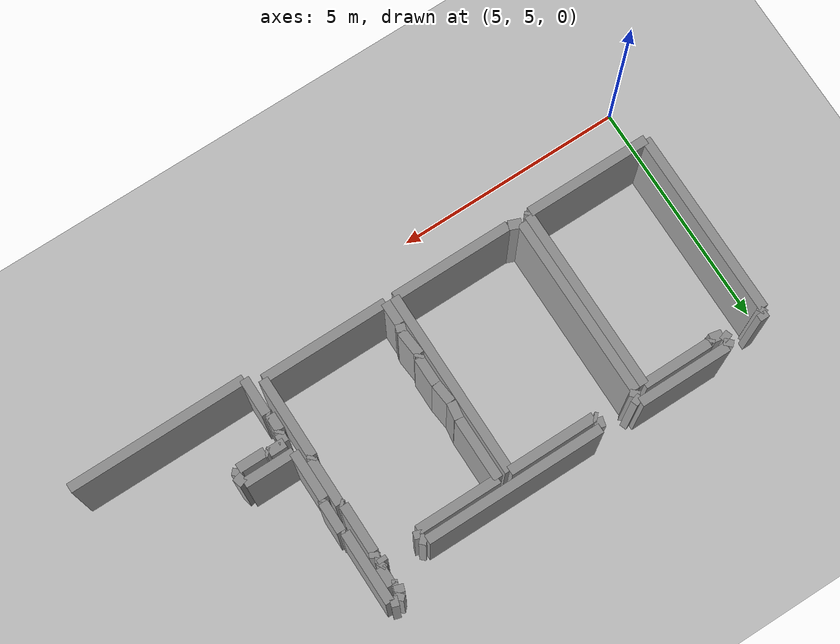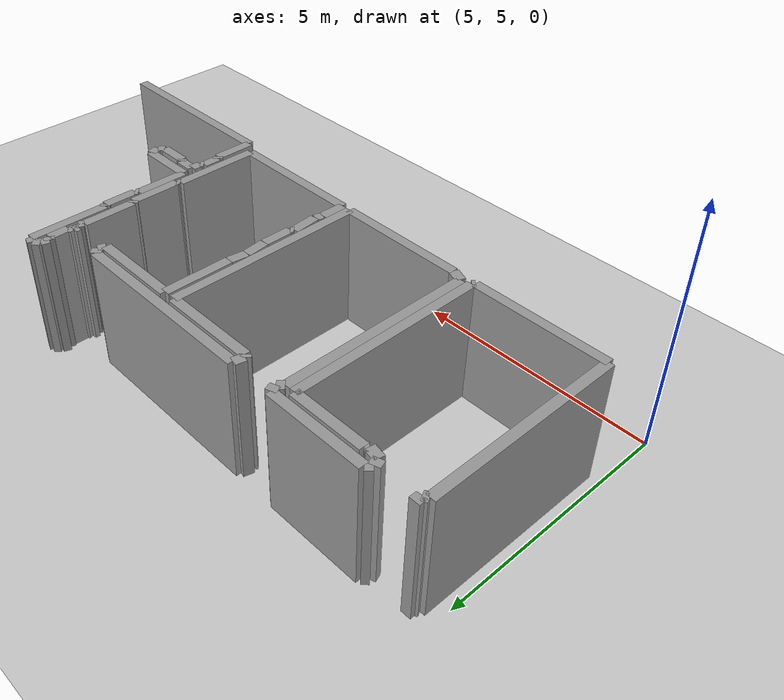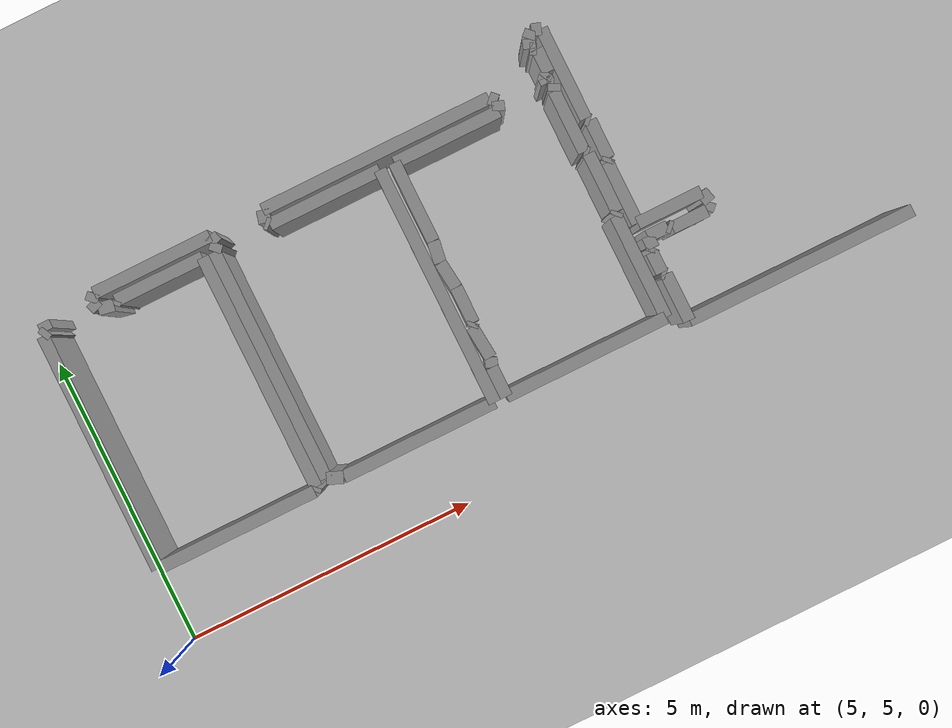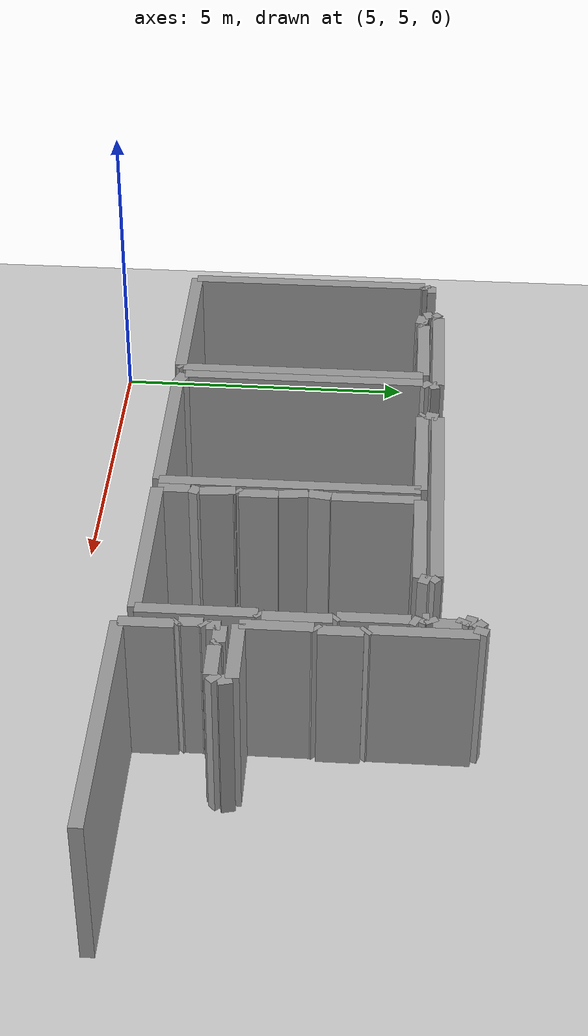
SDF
<sdf version="1.4">
 <world name="1_wall">
  <model name="ground_plane">
   <static>1</static>
   <link name="link">
    <collision name="collision">
     <geometry><plane><normal>0 0 1</normal><size>1000 1000</size></plane></geometry>
     <surface><friction><ode><mu>100</mu><mu2>50</mu2></ode></friction></surface>
    </collision>
    <visual name="visual">
     <cast_shadows>0</cast_shadows>
     <geometry><plane><normal>0 0 1</normal><size>10000 10000</size></plane></geometry>
     <material>
      <script><uri>file://media/materials/scripts/gazebo.material</uri><name>Gazebo/Grey</name></script>
     </material>
    </visual>
    <velocity_decay><linear>0</linear><angular>0</angular></velocity_decay>
   </link>
  </model>
  <model name="Wall_0">
   <static>1</static>
   <link name="Wall_0">
    <collision name="Wall_Collision_0">
     <geometry><box><size>3.85 0.2 2.5</size></box></geometry>
     <pose>0 0 1.25 0 -0 0</pose>
    </collision>
    <visual name="Wall_Visual_0">
     <pose>0 0 1.25 0 -0 0</pose>
     <geometry><box><size>3.85 0.2 2.5</size></box></geometry>
     <material>
      <script><uri>file://media/materials/scripts/gazebo.material</uri><name>Gazebo/Grey</name></script>
     </material>
    </visual>
    <velocity_decay><linear>0</linear><angular>0</angular></velocity_decay>
    <pose>16.275 6.15 0 0 0 3.14159265359</pose>
   </link>
  </model>
  <model name="Wall_1">
   <static>1</static>
   <link name="Wall_1">
    <collision name="Wall_Collision_1">
     <geometry><box><size>0.8 0.2 2.5</size></box></geometry>
     <pose>0 0 1.25 0 -0 0</pose>
    </collision>
    <visual name="Wall_Visual_1">
     <pose>0 0 1.25 0 -0 0</pose>
     <geometry><box><size>0.8 0.2 2.5</size></box></geometry>
     <material>
      <script><uri>file://media/materials/scripts/gazebo.material</uri><name>Gazebo/Grey</name></script>
     </material>
    </visual>
    <velocity_decay><linear>0</linear><angular>0</angular></velocity_decay>
    <pose>14.35 6.55 0 0 0 1.57079632679</pose>
   </link>
  </model>
  <model name="Wall_2">
   <static>1</static>
   <link name="Wall_2">
    <collision name="Wall_Collision_2">
     <geometry><box><size>0.0707106781187 0.2 2.5</size></box></geometry>
     <pose>0 0 1.25 0 -0 0</pose>
    </collision>
    <visual name="Wall_Visual_2">
     <pose>0 0 1.25 0 -0 0</pose>
     <geometry><box><size>0.0707106781187 0.2 2.5</size></box></geometry>
     <material>
      <script><uri>file://media/materials/scripts/gazebo.material</uri><name>Gazebo/Grey</name></script>
     </material>
    </visual>
    <velocity_decay><linear>0</linear><angular>0</angular></velocity_decay>
    <pose>14.325 6.975 0 0 0 2.35619449019</pose>
   </link>
  </model>
  <model name="Wall_3">
   <static>1</static>
   <link name="Wall_3">
    <collision name="Wall_Collision_3">
     <geometry><box><size>0.35 0.2 2.5</size></box></geometry>
     <pose>0 0 1.25 0 -0 0</pose>
    </collision>
    <visual name="Wall_Visual_3">
     <pose>0 0 1.25 0 -0 0</pose>
     <geometry><box><size>0.35 0.2 2.5</size></box></geometry>
     <material>
      <script><uri>file://media/materials/scripts/gazebo.material</uri><name>Gazebo/Grey</name></script>
     </material>
    </visual>
    <velocity_decay><linear>0</linear><angular>0</angular></velocity_decay>
    <pose>14.3 7.175 0 0 0 1.57079632679</pose>
   </link>
  </model>
  <model name="Wall_4">
   <static>1</static>
   <link name="Wall_4">
    <collision name="Wall_Collision_4">
     <geometry><box><size>0.0707106781187 0.2 2.5</size></box></geometry>
     <pose>0 0 1.25 0 -0 0</pose>
    </collision>
    <visual name="Wall_Visual_4">
     <pose>0 0 1.25 0 -0 0</pose>
     <geometry><box><size>0.0707106781187 0.2 2.5</size></box></geometry>
     <material>
      <script><uri>file://media/materials/scripts/gazebo.material</uri><name>Gazebo/Grey</name></script>
     </material>
    </visual>
    <velocity_decay><linear>0</linear><angular>0</angular></velocity_decay>
    <pose>14.325 7.375 0 0 0 0.785398163397</pose>
   </link>
  </model>
  <model name="Wall_5">
   <static>1</static>
   <link name="Wall_5">
    <collision name="Wall_Collision_5">
     <geometry><box><size>0.2 0.2 2.5</size></box></geometry>
     <pose>0 0 1.25 0 -0 0</pose>
    </collision>
    <visual name="Wall_Visual_5">
     <pose>0 0 1.25 0 -0 0</pose>
     <geometry><box><size>0.2 0.2 2.5</size></box></geometry>
     <material>
      <script><uri>file://media/materials/scripts/gazebo.material</uri><name>Gazebo/Grey</name></script>
     </material>
    </visual>
    <velocity_decay><linear>0</linear><angular>0</angular></velocity_decay>
    <pose>14.35 7.5 0 0 0 1.57079632679</pose>
   </link>
  </model>
  <model name="Wall_6">
   <static>1</static>
   <link name="Wall_6">
    <collision name="Wall_Collision_6">
     <geometry><box><size>0.35 0.2 2.5</size></box></geometry>
     <pose>0 0 1.25 0 -0 0</pose>
    </collision>
    <visual name="Wall_Visual_6">
     <pose>0 0 1.25 0 -0 0</pose>
     <geometry><box><size>0.35 0.2 2.5</size></box></geometry>
     <material>
      <script><uri>file://media/materials/scripts/gazebo.material</uri><name>Gazebo/Grey</name></script>
     </material>
    </visual>
    <velocity_decay><linear>0</linear><angular>0</angular></velocity_decay>
    <pose>14.525 7.6 0 0 0 0.0</pose>
   </link>
  </model>
  <model name="Wall_7">
   <static>1</static>
   <link name="Wall_7">
    <collision name="Wall_Collision_7">
     <geometry><box><size>0.0707106781187 0.2 2.5</size></box></geometry>
     <pose>0 0 1.25 0 -0 0</pose>
    </collision>
    <visual name="Wall_Visual_7">
     <pose>0 0 1.25 0 -0 0</pose>
     <geometry><box><size>0.0707106781187 0.2 2.5</size></box></geometry>
     <material>
      <script><uri>file://media/materials/scripts/gazebo.material</uri><name>Gazebo/Grey</name></script>
     </material>
    </visual>
    <velocity_decay><linear>0</linear><angular>0</angular></velocity_decay>
    <pose>14.725 7.575 0 0 0 -0.785398163397</pose>
   </link>
  </model>
  <model name="Wall_8">
   <static>1</static>
   <link name="Wall_8">
    <collision name="Wall_Collision_8">
     <geometry><box><size>0.6 0.2 2.5</size></box></geometry>
     <pose>0 0 1.25 0 -0 0</pose>
    </collision>
    <visual name="Wall_Visual_8">
     <pose>0 0 1.25 0 -0 0</pose>
     <geometry><box><size>0.6 0.2 2.5</size></box></geometry>
     <material>
      <script><uri>file://media/materials/scripts/gazebo.material</uri><name>Gazebo/Grey</name></script>
     </material>
    </visual>
    <velocity_decay><linear>0</linear><angular>0</angular></velocity_decay>
    <pose>15.05 7.55 0 0 0 0.0</pose>
   </link>
  </model>
  <model name="Wall_9">
   <static>1</static>
   <link name="Wall_9">
    <collision name="Wall_Collision_9">
     <geometry><box><size>0.141421356237 0.2 2.5</size></box></geometry>
     <pose>0 0 1.25 0 -0 0</pose>
    </collision>
    <visual name="Wall_Visual_9">
     <pose>0 0 1.25 0 -0 0</pose>
     <geometry><box><size>0.141421356237 0.2 2.5</size></box></geometry>
     <material>
      <script><uri>file://media/materials/scripts/gazebo.material</uri><name>Gazebo/Grey</name></script>
     </material>
    </visual>
    <velocity_decay><linear>0</linear><angular>0</angular></velocity_decay>
    <pose>15.4 7.6 0 0 0 0.785398163397</pose>
   </link>
  </model>
  <model name="Wall_10">
   <static>1</static>
   <link name="Wall_10">
    <collision name="Wall_Collision_10">
     <geometry><box><size>0.206155281281 0.2 2.5</size></box></geometry>
     <pose>0 0 1.25 0 -0 0</pose>
    </collision>
    <visual name="Wall_Visual_10">
     <pose>0 0 1.25 0 -0 0</pose>
     <geometry><box><size>0.206155281281 0.2 2.5</size></box></geometry>
     <material>
      <script><uri>file://media/materials/scripts/gazebo.material</uri><name>Gazebo/Grey</name></script>
     </material>
    </visual>
    <velocity_decay><linear>0</linear><angular>0</angular></velocity_decay>
    <pose>15.425 7.75 0 0 0 1.81577498992</pose>
   </link>
  </model>
  <model name="Wall_11">
   <static>1</static>
   <link name="Wall_11">
    <collision name="Wall_Collision_11">
     <geometry><box><size>1.1 0.2 2.5</size></box></geometry>
     <pose>0 0 1.25 0 -0 0</pose>
    </collision>
    <visual name="Wall_Visual_11">
     <pose>0 0 1.25 0 -0 0</pose>
     <geometry><box><size>1.1 0.2 2.5</size></box></geometry>
     <material>
      <script><uri>file://media/materials/scripts/gazebo.material</uri><name>Gazebo/Grey</name></script>
     </material>
    </visual>
    <velocity_decay><linear>0</linear><angular>0</angular></velocity_decay>
    <pose>14.85 7.85 0 0 0 3.14159265359</pose>
   </link>
  </model>
  <model name="Wall_12">
   <static>1</static>
   <link name="Wall_12">
    <collision name="Wall_Collision_12">
     <geometry><box><size>1.05 0.2 2.5</size></box></geometry>
     <pose>0 0 1.25 0 -0 0</pose>
    </collision>
    <visual name="Wall_Visual_12">
     <pose>0 0 1.25 0 -0 0</pose>
     <geometry><box><size>1.05 0.2 2.5</size></box></geometry>
     <material>
      <script><uri>file://media/materials/scripts/gazebo.material</uri><name>Gazebo/Grey</name></script>
     </material>
    </visual>
    <velocity_decay><linear>0</linear><angular>0</angular></velocity_decay>
    <pose>14.3 8.375 0 0 0 1.57079632679</pose>
   </link>
  </model>
  <model name="Wall_13">
   <static>1</static>
   <link name="Wall_13">
    <collision name="Wall_Collision_13">
     <geometry><box><size>0.0707106781187 0.2 2.5</size></box></geometry>
     <pose>0 0 1.25 0 -0 0</pose>
    </collision>
    <visual name="Wall_Visual_13">
     <pose>0 0 1.25 0 -0 0</pose>
     <geometry><box><size>0.0707106781187 0.2 2.5</size></box></geometry>
     <material>
      <script><uri>file://media/materials/scripts/gazebo.material</uri><name>Gazebo/Grey</name></script>
     </material>
    </visual>
    <velocity_decay><linear>0</linear><angular>0</angular></velocity_decay>
    <pose>14.325 8.925 0 0 0 0.785398163397</pose>
   </link>
  </model>
  <model name="Wall_14">
   <static>1</static>
   <link name="Wall_14">
    <collision name="Wall_Collision_14">
     <geometry><box><size>0.65 0.2 2.5</size></box></geometry>
     <pose>0 0 1.25 0 -0 0</pose>
    </collision>
    <visual name="Wall_Visual_14">
     <pose>0 0 1.25 0 -0 0</pose>
     <geometry><box><size>0.65 0.2 2.5</size></box></geometry>
     <material>
      <script><uri>file://media/materials/scripts/gazebo.material</uri><name>Gazebo/Grey</name></script>
     </material>
    </visual>
    <velocity_decay><linear>0</linear><angular>0</angular></velocity_decay>
    <pose>14.35 9.275 0 0 0 1.57079632679</pose>
   </link>
  </model>
  <model name="Wall_15">
   <static>1</static>
   <link name="Wall_15">
    <collision name="Wall_Collision_15">
     <geometry><box><size>0.0707106781187 0.2 2.5</size></box></geometry>
     <pose>0 0 1.25 0 -0 0</pose>
    </collision>
    <visual name="Wall_Visual_15">
     <pose>0 0 1.25 0 -0 0</pose>
     <geometry><box><size>0.0707106781187 0.2 2.5</size></box></geometry>
     <material>
      <script><uri>file://media/materials/scripts/gazebo.material</uri><name>Gazebo/Grey</name></script>
     </material>
    </visual>
    <velocity_decay><linear>0</linear><angular>0</angular></velocity_decay>
    <pose>14.325 9.625 0 0 0 2.35619449019</pose>
   </link>
  </model>
  <model name="Wall_16">
   <static>1</static>
   <link name="Wall_16">
    <collision name="Wall_Collision_16">
     <geometry><box><size>1.55 0.2 2.5</size></box></geometry>
     <pose>0 0 1.25 0 -0 0</pose>
    </collision>
    <visual name="Wall_Visual_16">
     <pose>0 0 1.25 0 -0 0</pose>
     <geometry><box><size>1.55 0.2 2.5</size></box></geometry>
     <material>
      <script><uri>file://media/materials/scripts/gazebo.material</uri><name>Gazebo/Grey</name></script>
     </material>
    </visual>
    <velocity_decay><linear>0</linear><angular>0</angular></velocity_decay>
    <pose>14.3 10.425 0 0 0 1.57079632679</pose>
   </link>
  </model>
  <model name="Wall_17">
   <static>1</static>
   <link name="Wall_17">
    <collision name="Wall_Collision_17">
     <geometry><box><size>0.158113883008 0.2 2.5</size></box></geometry>
     <pose>0 0 1.25 0 -0 0</pose>
    </collision>
    <visual name="Wall_Visual_17">
     <pose>0 0 1.25 0 -0 0</pose>
     <geometry><box><size>0.158113883008 0.2 2.5</size></box></geometry>
     <material>
      <script><uri>file://media/materials/scripts/gazebo.material</uri><name>Gazebo/Grey</name></script>
     </material>
    </visual>
    <velocity_decay><linear>0</linear><angular>0</angular></velocity_decay>
    <pose>14.225 11.225 0 0 0 2.81984209919</pose>
   </link>
  </model>
  <model name="Wall_18">
   <static>1</static>
   <link name="Wall_18">
    <collision name="Wall_Collision_18">
     <geometry><box><size>0.141421356237 0.2 2.5</size></box></geometry>
     <pose>0 0 1.25 0 -0 0</pose>
    </collision>
    <visual name="Wall_Visual_18">
     <pose>0 0 1.25 0 -0 0</pose>
     <geometry><box><size>0.141421356237 0.2 2.5</size></box></geometry>
     <material>
      <script><uri>file://media/materials/scripts/gazebo.material</uri><name>Gazebo/Grey</name></script>
     </material>
    </visual>
    <velocity_decay><linear>0</linear><angular>0</angular></velocity_decay>
    <pose>14.1 11.2 0 0 0 -2.35619449019</pose>
   </link>
  </model>
  <model name="Wall_19">
   <static>1</static>
   <link name="Wall_19">
    <collision name="Wall_Collision_19">
     <geometry><box><size>0.158113883008 0.2 2.5</size></box></geometry>
     <pose>0 0 1.25 0 -0 0</pose>
    </collision>
    <visual name="Wall_Visual_19">
     <pose>0 0 1.25 0 -0 0</pose>
     <geometry><box><size>0.158113883008 0.2 2.5</size></box></geometry>
     <material>
      <script><uri>file://media/materials/scripts/gazebo.material</uri><name>Gazebo/Grey</name></script>
     </material>
    </visual>
    <velocity_decay><linear>0</linear><angular>0</angular></velocity_decay>
    <pose>14.025 11.075 0 0 0 -1.89254688119</pose>
   </link>
  </model>
  <model name="Wall_20">
   <static>1</static>
   <link name="Wall_20">
    <collision name="Wall_Collision_20">
     <geometry><box><size>0.111803398875 0.2 2.5</size></box></geometry>
     <pose>0 0 1.25 0 -0 0</pose>
    </collision>
    <visual name="Wall_Visual_20">
     <pose>0 0 1.25 0 -0 0</pose>
     <geometry><box><size>0.111803398875 0.2 2.5</size></box></geometry>
     <material>
      <script><uri>file://media/materials/scripts/gazebo.material</uri><name>Gazebo/Grey</name></script>
     </material>
    </visual>
    <velocity_decay><linear>0</linear><angular>0</angular></velocity_decay>
    <pose>14.05 10.975 0 0 0 -0.463647609001</pose>
   </link>
  </model>
  <model name="Wall_21">
   <static>1</static>
   <link name="Wall_21">
    <collision name="Wall_Collision_21">
     <geometry><box><size>0.4 0.2 2.5</size></box></geometry>
     <pose>0 0 1.25 0 -0 0</pose>
    </collision>
    <visual name="Wall_Visual_21">
     <pose>0 0 1.25 0 -0 0</pose>
     <geometry><box><size>0.4 0.2 2.5</size></box></geometry>
     <material>
      <script><uri>file://media/materials/scripts/gazebo.material</uri><name>Gazebo/Grey</name></script>
     </material>
    </visual>
    <velocity_decay><linear>0</linear><angular>0</angular></velocity_decay>
    <pose>14.1 10.75 0 0 0 -1.57079632679</pose>
   </link>
  </model>
  <model name="Wall_22">
   <static>1</static>
   <link name="Wall_22">
    <collision name="Wall_Collision_22">
     <geometry><box><size>0.111803398875 0.2 2.5</size></box></geometry>
     <pose>0 0 1.25 0 -0 0</pose>
    </collision>
    <visual name="Wall_Visual_22">
     <pose>0 0 1.25 0 -0 0</pose>
     <geometry><box><size>0.111803398875 0.2 2.5</size></box></geometry>
     <material>
      <script><uri>file://media/materials/scripts/gazebo.material</uri><name>Gazebo/Grey</name></script>
     </material>
    </visual>
    <velocity_decay><linear>0</linear><angular>0</angular></velocity_decay>
    <pose>14.05 10.525 0 0 0 -2.67794504459</pose>
   </link>
  </model>
  <model name="Wall_23">
   <static>1</static>
   <link name="Wall_23">
    <collision name="Wall_Collision_23">
     <geometry><box><size>0.1 0.2 2.5</size></box></geometry>
     <pose>0 0 1.25 0 -0 0</pose>
    </collision>
    <visual name="Wall_Visual_23">
     <pose>0 0 1.25 0 -0 0</pose>
     <geometry><box><size>0.1 0.2 2.5</size></box></geometry>
     <material>
      <script><uri>file://media/materials/scripts/gazebo.material</uri><name>Gazebo/Grey</name></script>
     </material>
    </visual>
    <velocity_decay><linear>0</linear><angular>0</angular></velocity_decay>
    <pose>14.0 10.45 0 0 0 -1.57079632679</pose>
   </link>
  </model>
  <model name="Wall_24">
   <static>1</static>
   <link name="Wall_24">
    <collision name="Wall_Collision_24">
     <geometry><box><size>0.111803398875 0.2 2.5</size></box></geometry>
     <pose>0 0 1.25 0 -0 0</pose>
    </collision>
    <visual name="Wall_Visual_24">
     <pose>0 0 1.25 0 -0 0</pose>
     <geometry><box><size>0.111803398875 0.2 2.5</size></box></geometry>
     <material>
      <script><uri>file://media/materials/scripts/gazebo.material</uri><name>Gazebo/Grey</name></script>
     </material>
    </visual>
    <velocity_decay><linear>0</linear><angular>0</angular></velocity_decay>
    <pose>14.05 10.375 0 0 0 -0.463647609001</pose>
   </link>
  </model>
  <model name="Wall_25">
   <static>1</static>
   <link name="Wall_25">
    <collision name="Wall_Collision_25">
     <geometry><box><size>0.111803398875 0.2 2.5</size></box></geometry>
     <pose>0 0 1.25 0 -0 0</pose>
    </collision>
    <visual name="Wall_Visual_25">
     <pose>0 0 1.25 0 -0 0</pose>
     <geometry><box><size>0.111803398875 0.2 2.5</size></box></geometry>
     <material>
      <script><uri>file://media/materials/scripts/gazebo.material</uri><name>Gazebo/Grey</name></script>
     </material>
    </visual>
    <velocity_decay><linear>0</linear><angular>0</angular></velocity_decay>
    <pose>14.075 10.3 0 0 0 -2.0344439358</pose>
   </link>
  </model>
  <model name="Wall_26">
   <static>1</static>
   <link name="Wall_26">
    <collision name="Wall_Collision_26">
     <geometry><box><size>1.05 0.2 2.5</size></box></geometry>
     <pose>0 0 1.25 0 -0 0</pose>
    </collision>
    <visual name="Wall_Visual_26">
     <pose>0 0 1.25 0 -0 0</pose>
     <geometry><box><size>1.05 0.2 2.5</size></box></geometry>
     <material>
      <script><uri>file://media/materials/scripts/gazebo.material</uri><name>Gazebo/Grey</name></script>
     </material>
    </visual>
    <velocity_decay><linear>0</linear><angular>0</angular></velocity_decay>
    <pose>14.05 9.725 0 0 0 -1.57079632679</pose>
   </link>
  </model>
  <model name="Wall_27">
   <static>1</static>
   <link name="Wall_27">
    <collision name="Wall_Collision_27">
     <geometry><box><size>0.0707106781187 0.2 2.5</size></box></geometry>
     <pose>0 0 1.25 0 -0 0</pose>
    </collision>
    <visual name="Wall_Visual_27">
     <pose>0 0 1.25 0 -0 0</pose>
     <geometry><box><size>0.0707106781187 0.2 2.5</size></box></geometry>
     <material>
      <script><uri>file://media/materials/scripts/gazebo.material</uri><name>Gazebo/Grey</name></script>
     </material>
    </visual>
    <velocity_decay><linear>0</linear><angular>0</angular></velocity_decay>
    <pose>14.075 9.175 0 0 0 -0.785398163397</pose>
   </link>
  </model>
  <model name="Wall_28">
   <static>1</static>
   <link name="Wall_28">
    <collision name="Wall_Collision_28">
     <geometry><box><size>1.0 0.2 2.5</size></box></geometry>
     <pose>0 0 1.25 0 -0 0</pose>
    </collision>
    <visual name="Wall_Visual_28">
     <pose>0 0 1.25 0 -0 0</pose>
     <geometry><box><size>1.0 0.2 2.5</size></box></geometry>
     <material>
      <script><uri>file://media/materials/scripts/gazebo.material</uri><name>Gazebo/Grey</name></script>
     </material>
    </visual>
    <velocity_decay><linear>0</linear><angular>0</angular></velocity_decay>
    <pose>14.1 8.65 0 0 0 -1.57079632679</pose>
   </link>
  </model>
  <model name="Wall_29">
   <static>1</static>
   <link name="Wall_29">
    <collision name="Wall_Collision_29">
     <geometry><box><size>0.0707106781187 0.2 2.5</size></box></geometry>
     <pose>0 0 1.25 0 -0 0</pose>
    </collision>
    <visual name="Wall_Visual_29">
     <pose>0 0 1.25 0 -0 0</pose>
     <geometry><box><size>0.0707106781187 0.2 2.5</size></box></geometry>
     <material>
      <script><uri>file://media/materials/scripts/gazebo.material</uri><name>Gazebo/Grey</name></script>
     </material>
    </visual>
    <velocity_decay><linear>0</linear><angular>0</angular></velocity_decay>
    <pose>14.075 8.125 0 0 0 -2.35619449019</pose>
   </link>
  </model>
  <model name="Wall_30">
   <static>1</static>
   <link name="Wall_30">
    <collision name="Wall_Collision_30">
     <geometry><box><size>1.75 0.2 2.5</size></box></geometry>
     <pose>0 0 1.25 0 -0 0</pose>
    </collision>
    <visual name="Wall_Visual_30">
     <pose>0 0 1.25 0 -0 0</pose>
     <geometry><box><size>1.75 0.2 2.5</size></box></geometry>
     <material>
      <script><uri>file://media/materials/scripts/gazebo.material</uri><name>Gazebo/Grey</name></script>
     </material>
    </visual>
    <velocity_decay><linear>0</linear><angular>0</angular></velocity_decay>
    <pose>14.05 7.225 0 0 0 -1.57079632679</pose>
   </link>
  </model>
  <model name="Wall_31">
   <static>1</static>
   <link name="Wall_31">
    <collision name="Wall_Collision_31">
     <geometry><box><size>2.75 0.2 2.5</size></box></geometry>
     <pose>0 0 1.25 0 -0 0</pose>
    </collision>
    <visual name="Wall_Visual_31">
     <pose>0 0 1.25 0 -0 0</pose>
     <geometry><box><size>2.75 0.2 2.5</size></box></geometry>
     <material>
      <script><uri>file://media/materials/scripts/gazebo.material</uri><name>Gazebo/Grey</name></script>
     </material>
    </visual>
    <velocity_decay><linear>0</linear><angular>0</angular></velocity_decay>
    <pose>12.675 6.35 0 0 0 3.14159265359</pose>
   </link>
  </model>
  <model name="Wall_32">
   <static>1</static>
   <link name="Wall_32">
    <collision name="Wall_Collision_32">
     <geometry><box><size>0.5 0.2 2.5</size></box></geometry>
     <pose>0 0 1.25 0 -0 0</pose>
    </collision>
    <visual name="Wall_Visual_32">
     <pose>0 0 1.25 0 -0 0</pose>
     <geometry><box><size>0.5 0.2 2.5</size></box></geometry>
     <material>
      <script><uri>file://media/materials/scripts/gazebo.material</uri><name>Gazebo/Grey</name></script>
     </material>
    </visual>
    <velocity_decay><linear>0</linear><angular>0</angular></velocity_decay>
    <pose>11.3 6.6 0 0 0 1.57079632679</pose>
   </link>
  </model>
  <model name="Wall_33">
   <static>1</static>
   <link name="Wall_33">
    <collision name="Wall_Collision_33">
     <geometry><box><size>0.158113883008 0.2 2.5</size></box></geometry>
     <pose>0 0 1.25 0 -0 0</pose>
    </collision>
    <visual name="Wall_Visual_33">
     <pose>0 0 1.25 0 -0 0</pose>
     <geometry><box><size>0.158113883008 0.2 2.5</size></box></geometry>
     <material>
      <script><uri>file://media/materials/scripts/gazebo.material</uri><name>Gazebo/Grey</name></script>
     </material>
    </visual>
    <velocity_decay><linear>0</linear><angular>0</angular></velocity_decay>
    <pose>11.325 6.925 0 0 0 1.2490457724</pose>
   </link>
  </model>
  <model name="Wall_34">
   <static>1</static>
   <link name="Wall_34">
    <collision name="Wall_Collision_34">
     <geometry><box><size>0.552268050859 0.2 2.5</size></box></geometry>
     <pose>0 0 1.25 0 -0 0</pose>
    </collision>
    <visual name="Wall_Visual_34">
     <pose>0 0 1.25 0 -0 0</pose>
     <geometry><box><size>0.552268050859 0.2 2.5</size></box></geometry>
     <material>
      <script><uri>file://media/materials/scripts/gazebo.material</uri><name>Gazebo/Grey</name></script>
     </material>
    </visual>
    <velocity_decay><linear>0</linear><angular>0</angular></velocity_decay>
    <pose>11.325 7.275 0 0 0 1.661456214</pose>
   </link>
  </model>
  <model name="Wall_35">
   <static>1</static>
   <link name="Wall_35">
    <collision name="Wall_Collision_35">
     <geometry><box><size>0.0707106781187 0.2 2.5</size></box></geometry>
     <pose>0 0 1.25 0 -0 0</pose>
    </collision>
    <visual name="Wall_Visual_35">
     <pose>0 0 1.25 0 -0 0</pose>
     <geometry><box><size>0.0707106781187 0.2 2.5</size></box></geometry>
     <material>
      <script><uri>file://media/materials/scripts/gazebo.material</uri><name>Gazebo/Grey</name></script>
     </material>
    </visual>
    <velocity_decay><linear>0</linear><angular>0</angular></velocity_decay>
    <pose>11.325 7.575 0 0 0 0.785398163397</pose>
   </link>
  </model>
  <model name="Wall_36">
   <static>1</static>
   <link name="Wall_36">
    <collision name="Wall_Collision_36">
     <geometry><box><size>0.6 0.2 2.5</size></box></geometry>
     <pose>0 0 1.25 0 -0 0</pose>
    </collision>
    <visual name="Wall_Visual_36">
     <pose>0 0 1.25 0 -0 0</pose>
     <geometry><box><size>0.6 0.2 2.5</size></box></geometry>
     <material>
      <script><uri>file://media/materials/scripts/gazebo.material</uri><name>Gazebo/Grey</name></script>
     </material>
    </visual>
    <velocity_decay><linear>0</linear><angular>0</angular></velocity_decay>
    <pose>11.35 7.9 0 0 0 1.57079632679</pose>
   </link>
  </model>
  <model name="Wall_37">
   <static>1</static>
   <link name="Wall_37">
    <collision name="Wall_Collision_37">
     <geometry><box><size>0.452769256907 0.2 2.5</size></box></geometry>
     <pose>0 0 1.25 0 -0 0</pose>
    </collision>
    <visual name="Wall_Visual_37">
     <pose>0 0 1.25 0 -0 0</pose>
     <geometry><box><size>0.452769256907 0.2 2.5</size></box></geometry>
     <material>
      <script><uri>file://media/materials/scripts/gazebo.material</uri><name>Gazebo/Grey</name></script>
     </material>
    </visual>
    <velocity_decay><linear>0</linear><angular>0</angular></velocity_decay>
    <pose>11.325 8.425 0 0 0 1.68145354797</pose>
   </link>
  </model>
  <model name="Wall_38">
   <static>1</static>
   <link name="Wall_38">
    <collision name="Wall_Collision_38">
     <geometry><box><size>0.353553390593 0.2 2.5</size></box></geometry>
     <pose>0 0 1.25 0 -0 0</pose>
    </collision>
    <visual name="Wall_Visual_38">
     <pose>0 0 1.25 0 -0 0</pose>
     <geometry><box><size>0.353553390593 0.2 2.5</size></box></geometry>
     <material>
      <script><uri>file://media/materials/scripts/gazebo.material</uri><name>Gazebo/Grey</name></script>
     </material>
    </visual>
    <velocity_decay><linear>0</linear><angular>0</angular></velocity_decay>
    <pose>11.325 8.825 0 0 0 1.42889927219</pose>
   </link>
  </model>
  <model name="Wall_39">
   <static>1</static>
   <link name="Wall_39">
    <collision name="Wall_Collision_39">
     <geometry><box><size>1.35 0.2 2.5</size></box></geometry>
     <pose>0 0 1.25 0 -0 0</pose>
    </collision>
    <visual name="Wall_Visual_39">
     <pose>0 0 1.25 0 -0 0</pose>
     <geometry><box><size>1.35 0.2 2.5</size></box></geometry>
     <material>
      <script><uri>file://media/materials/scripts/gazebo.material</uri><name>Gazebo/Grey</name></script>
     </material>
    </visual>
    <velocity_decay><linear>0</linear><angular>0</angular></velocity_decay>
    <pose>11.35 9.675 0 0 0 1.57079632679</pose>
   </link>
  </model>
  <model name="Wall_40">
   <static>1</static>
   <link name="Wall_40">
    <collision name="Wall_Collision_40">
     <geometry><box><size>1.8 0.2 2.5</size></box></geometry>
     <pose>0 0 1.25 0 -0 0</pose>
    </collision>
    <visual name="Wall_Visual_40">
     <pose>0 0 1.25 0 -0 0</pose>
     <geometry><box><size>1.8 0.2 2.5</size></box></geometry>
     <material>
      <script><uri>file://media/materials/scripts/gazebo.material</uri><name>Gazebo/Grey</name></script>
     </material>
    </visual>
    <velocity_decay><linear>0</linear><angular>0</angular></velocity_decay>
    <pose>12.25 10.35 0 0 0 0.0</pose>
   </link>
  </model>
  <model name="Wall_41">
   <static>1</static>
   <link name="Wall_41">
    <collision name="Wall_Collision_41">
     <geometry><box><size>0.158113883008 0.2 2.5</size></box></geometry>
     <pose>0 0 1.25 0 -0 0</pose>
    </collision>
    <visual name="Wall_Visual_41">
     <pose>0 0 1.25 0 -0 0</pose>
     <geometry><box><size>0.158113883008 0.2 2.5</size></box></geometry>
     <material>
      <script><uri>file://media/materials/scripts/gazebo.material</uri><name>Gazebo/Grey</name></script>
     </material>
    </visual>
    <velocity_decay><linear>0</linear><angular>0</angular></velocity_decay>
    <pose>13.175 10.425 0 0 0 1.2490457724</pose>
   </link>
  </model>
  <model name="Wall_42">
   <static>1</static>
   <link name="Wall_42">
    <collision name="Wall_Collision_42">
     <geometry><box><size>0.141421356237 0.2 2.5</size></box></geometry>
     <pose>0 0 1.25 0 -0 0</pose>
    </collision>
    <visual name="Wall_Visual_42">
     <pose>0 0 1.25 0 -0 0</pose>
     <geometry><box><size>0.141421356237 0.2 2.5</size></box></geometry>
     <material>
      <script><uri>file://media/materials/scripts/gazebo.material</uri><name>Gazebo/Grey</name></script>
     </material>
    </visual>
    <velocity_decay><linear>0</linear><angular>0</angular></velocity_decay>
    <pose>13.15 10.55 0 0 0 2.35619449019</pose>
   </link>
  </model>
  <model name="Wall_43">
   <static>1</static>
   <link name="Wall_43">
    <collision name="Wall_Collision_43">
     <geometry><box><size>3.9 0.2 2.5</size></box></geometry>
     <pose>0 0 1.25 0 -0 0</pose>
    </collision>
    <visual name="Wall_Visual_43">
     <pose>0 0 1.25 0 -0 0</pose>
     <geometry><box><size>3.9 0.2 2.5</size></box></geometry>
     <material>
      <script><uri>file://media/materials/scripts/gazebo.material</uri><name>Gazebo/Grey</name></script>
     </material>
    </visual>
    <velocity_decay><linear>0</linear><angular>0</angular></velocity_decay>
    <pose>11.15 10.6 0 0 0 3.14159265359</pose>
   </link>
  </model>
  <model name="Wall_44">
   <static>1</static>
   <link name="Wall_44">
    <collision name="Wall_Collision_44">
     <geometry><box><size>0.206155281281 0.2 2.5</size></box></geometry>
     <pose>0 0 1.25 0 -0 0</pose>
    </collision>
    <visual name="Wall_Visual_44">
     <pose>0 0 1.25 0 -0 0</pose>
     <geometry><box><size>0.206155281281 0.2 2.5</size></box></geometry>
     <material>
      <script><uri>file://media/materials/scripts/gazebo.material</uri><name>Gazebo/Grey</name></script>
     </material>
    </visual>
    <velocity_decay><linear>0</linear><angular>0</angular></velocity_decay>
    <pose>9.175 10.5 0 0 0 -1.81577498992</pose>
   </link>
  </model>
  <model name="Wall_45">
   <static>1</static>
   <link name="Wall_45">
    <collision name="Wall_Collision_45">
     <geometry><box><size>0.0707106781187 0.2 2.5</size></box></geometry>
     <pose>0 0 1.25 0 -0 0</pose>
    </collision>
    <visual name="Wall_Visual_45">
     <pose>0 0 1.25 0 -0 0</pose>
     <geometry><box><size>0.0707106781187 0.2 2.5</size></box></geometry>
     <material>
      <script><uri>file://media/materials/scripts/gazebo.material</uri><name>Gazebo/Grey</name></script>
     </material>
    </visual>
    <velocity_decay><linear>0</linear><angular>0</angular></velocity_decay>
    <pose>9.175 10.375 0 0 0 -0.785398163397</pose>
   </link>
  </model>
  <model name="Wall_46">
   <static>1</static>
   <link name="Wall_46">
    <collision name="Wall_Collision_46">
     <geometry><box><size>1.9 0.2 2.5</size></box></geometry>
     <pose>0 0 1.25 0 -0 0</pose>
    </collision>
    <visual name="Wall_Visual_46">
     <pose>0 0 1.25 0 -0 0</pose>
     <geometry><box><size>1.9 0.2 2.5</size></box></geometry>
     <material>
      <script><uri>file://media/materials/scripts/gazebo.material</uri><name>Gazebo/Grey</name></script>
     </material>
    </visual>
    <velocity_decay><linear>0</linear><angular>0</angular></velocity_decay>
    <pose>10.15 10.35 0 0 0 0.0</pose>
   </link>
  </model>
  <model name="Wall_47">
   <static>1</static>
   <link name="Wall_47">
    <collision name="Wall_Collision_47">
     <geometry><box><size>4.0 0.2 2.5</size></box></geometry>
     <pose>0 0 1.25 0 -0 0</pose>
    </collision>
    <visual name="Wall_Visual_47">
     <pose>0 0 1.25 0 -0 0</pose>
     <geometry><box><size>4.0 0.2 2.5</size></box></geometry>
     <material>
      <script><uri>file://media/materials/scripts/gazebo.material</uri><name>Gazebo/Grey</name></script>
     </material>
    </visual>
    <velocity_decay><linear>0</linear><angular>0</angular></velocity_decay>
    <pose>11.1 8.35 0 0 0 -1.57079632679</pose>
   </link>
  </model>
  <model name="Wall_48">
   <static>1</static>
   <link name="Wall_48">
    <collision name="Wall_Collision_48">
     <geometry><box><size>2.6 0.2 2.5</size></box></geometry>
     <pose>0 0 1.25 0 -0 0</pose>
    </collision>
    <visual name="Wall_Visual_48">
     <pose>0 0 1.25 0 -0 0</pose>
     <geometry><box><size>2.6 0.2 2.5</size></box></geometry>
     <material>
      <script><uri>file://media/materials/scripts/gazebo.material</uri><name>Gazebo/Grey</name></script>
     </material>
    </visual>
    <velocity_decay><linear>0</linear><angular>0</angular></velocity_decay>
    <pose>9.8 6.35 0 0 0 3.14159265359</pose>
   </link>
  </model>
  <model name="Wall_49">
   <static>1</static>
   <link name="Wall_49">
    <collision name="Wall_Collision_49">
     <geometry><box><size>0.269258240357 0.2 2.5</size></box></geometry>
     <pose>0 0 1.25 0 -0 0</pose>
    </collision>
    <visual name="Wall_Visual_49">
     <pose>0 0 1.25 0 -0 0</pose>
     <geometry><box><size>0.269258240357 0.2 2.5</size></box></geometry>
     <material>
      <script><uri>file://media/materials/scripts/gazebo.material</uri><name>Gazebo/Grey</name></script>
     </material>
    </visual>
    <velocity_decay><linear>0</linear><angular>0</angular></velocity_decay>
    <pose>8.375 6.4 0 0 0 2.76108627648</pose>
   </link>
  </model>
  <model name="Wall_50">
   <static>1</static>
   <link name="Wall_50">
    <collision name="Wall_Collision_50">
     <geometry><box><size>3.9 0.2 2.5</size></box></geometry>
     <pose>0 0 1.25 0 -0 0</pose>
    </collision>
    <visual name="Wall_Visual_50">
     <pose>0 0 1.25 0 -0 0</pose>
     <geometry><box><size>3.9 0.2 2.5</size></box></geometry>
     <material>
      <script><uri>file://media/materials/scripts/gazebo.material</uri><name>Gazebo/Grey</name></script>
     </material>
    </visual>
    <velocity_decay><linear>0</linear><angular>0</angular></velocity_decay>
    <pose>8.25 8.4 0 0 0 1.57079632679</pose>
   </link>
  </model>
  <model name="Wall_51">
   <static>1</static>
   <link name="Wall_51">
    <collision name="Wall_Collision_51">
     <geometry><box><size>0.141421356237 0.2 2.5</size></box></geometry>
     <pose>0 0 1.25 0 -0 0</pose>
    </collision>
    <visual name="Wall_Visual_51">
     <pose>0 0 1.25 0 -0 0</pose>
     <geometry><box><size>0.141421356237 0.2 2.5</size></box></geometry>
     <material>
      <script><uri>file://media/materials/scripts/gazebo.material</uri><name>Gazebo/Grey</name></script>
     </material>
    </visual>
    <velocity_decay><linear>0</linear><angular>0</angular></velocity_decay>
    <pose>8.3 10.4 0 0 0 0.785398163397</pose>
   </link>
  </model>
  <model name="Wall_52">
   <static>1</static>
   <link name="Wall_52">
    <collision name="Wall_Collision_52">
     <geometry><box><size>0.158113883008 0.2 2.5</size></box></geometry>
     <pose>0 0 1.25 0 -0 0</pose>
    </collision>
    <visual name="Wall_Visual_52">
     <pose>0 0 1.25 0 -0 0</pose>
     <geometry><box><size>0.158113883008 0.2 2.5</size></box></geometry>
     <material>
      <script><uri>file://media/materials/scripts/gazebo.material</uri><name>Gazebo/Grey</name></script>
     </material>
    </visual>
    <velocity_decay><linear>0</linear><angular>0</angular></velocity_decay>
    <pose>8.325 10.525 0 0 0 1.89254688119</pose>
   </link>
  </model>
  <model name="Wall_53">
   <static>1</static>
   <link name="Wall_53">
    <collision name="Wall_Collision_53">
     <geometry><box><size>2.0 0.2 2.5</size></box></geometry>
     <pose>0 0 1.25 0 -0 0</pose>
    </collision>
    <visual name="Wall_Visual_53">
     <pose>0 0 1.25 0 -0 0</pose>
     <geometry><box><size>2.0 0.2 2.5</size></box></geometry>
     <material>
      <script><uri>file://media/materials/scripts/gazebo.material</uri><name>Gazebo/Grey</name></script>
     </material>
    </visual>
    <velocity_decay><linear>0</linear><angular>0</angular></velocity_decay>
    <pose>7.3 10.6 0 0 0 3.14159265359</pose>
   </link>
  </model>
  <model name="Wall_54">
   <static>1</static>
   <link name="Wall_54">
    <collision name="Wall_Collision_54">
     <geometry><box><size>0.141421356237 0.2 2.5</size></box></geometry>
     <pose>0 0 1.25 0 -0 0</pose>
    </collision>
    <visual name="Wall_Visual_54">
     <pose>0 0 1.25 0 -0 0</pose>
     <geometry><box><size>0.141421356237 0.2 2.5</size></box></geometry>
     <material>
      <script><uri>file://media/materials/scripts/gazebo.material</uri><name>Gazebo/Grey</name></script>
     </material>
    </visual>
    <velocity_decay><linear>0</linear><angular>0</angular></velocity_decay>
    <pose>6.25 10.55 0 0 0 -2.35619449019</pose>
   </link>
  </model>
  <model name="Wall_55">
   <static>1</static>
   <link name="Wall_55">
    <collision name="Wall_Collision_55">
     <geometry><box><size>0.158113883008 0.2 2.5</size></box></geometry>
     <pose>0 0 1.25 0 -0 0</pose>
    </collision>
    <visual name="Wall_Visual_55">
     <pose>0 0 1.25 0 -0 0</pose>
     <geometry><box><size>0.158113883008 0.2 2.5</size></box></geometry>
     <material>
      <script><uri>file://media/materials/scripts/gazebo.material</uri><name>Gazebo/Grey</name></script>
     </material>
    </visual>
    <velocity_decay><linear>0</linear><angular>0</angular></velocity_decay>
    <pose>6.225 10.425 0 0 0 -1.2490457724</pose>
   </link>
  </model>
  <model name="Wall_56">
   <static>1</static>
   <link name="Wall_56">
    <collision name="Wall_Collision_56">
     <geometry><box><size>0.25495097568 0.2 2.5</size></box></geometry>
     <pose>0 0 1.25 0 -0 0</pose>
    </collision>
    <visual name="Wall_Visual_56">
     <pose>0 0 1.25 0 -0 0</pose>
     <geometry><box><size>0.25495097568 0.2 2.5</size></box></geometry>
     <material>
      <script><uri>file://media/materials/scripts/gazebo.material</uri><name>Gazebo/Grey</name></script>
     </material>
    </visual>
    <velocity_decay><linear>0</linear><angular>0</angular></velocity_decay>
    <pose>6.375 10.325 0 0 0 -0.19739555985</pose>
   </link>
  </model>
  <model name="Wall_57">
   <static>1</static>
   <link name="Wall_57">
    <collision name="Wall_Collision_57">
     <geometry><box><size>0.0707106781187 0.2 2.5</size></box></geometry>
     <pose>0 0 1.25 0 -0 0</pose>
    </collision>
    <visual name="Wall_Visual_57">
     <pose>0 0 1.25 0 -0 0</pose>
     <geometry><box><size>0.0707106781187 0.2 2.5</size></box></geometry>
     <material>
      <script><uri>file://media/materials/scripts/gazebo.material</uri><name>Gazebo/Grey</name></script>
     </material>
    </visual>
    <velocity_decay><linear>0</linear><angular>0</angular></velocity_decay>
    <pose>6.525 10.325 0 0 0 0.785398163397</pose>
   </link>
  </model>
  <model name="Wall_58">
   <static>1</static>
   <link name="Wall_58">
    <collision name="Wall_Collision_58">
     <geometry><box><size>1.5 0.2 2.5</size></box></geometry>
     <pose>0 0 1.25 0 -0 0</pose>
    </collision>
    <visual name="Wall_Visual_58">
     <pose>0 0 1.25 0 -0 0</pose>
     <geometry><box><size>1.5 0.2 2.5</size></box></geometry>
     <material>
      <script><uri>file://media/materials/scripts/gazebo.material</uri><name>Gazebo/Grey</name></script>
     </material>
    </visual>
    <velocity_decay><linear>0</linear><angular>0</angular></velocity_decay>
    <pose>7.3 10.35 0 0 0 0.0</pose>
   </link>
  </model>
  <model name="Wall_59">
   <static>1</static>
   <link name="Wall_59">
    <collision name="Wall_Collision_59">
     <geometry><box><size>3.95 0.2 2.5</size></box></geometry>
     <pose>0 0 1.25 0 -0 0</pose>
    </collision>
    <visual name="Wall_Visual_59">
     <pose>0 0 1.25 0 -0 0</pose>
     <geometry><box><size>3.95 0.2 2.5</size></box></geometry>
     <material>
      <script><uri>file://media/materials/scripts/gazebo.material</uri><name>Gazebo/Grey</name></script>
     </material>
    </visual>
    <velocity_decay><linear>0</linear><angular>0</angular></velocity_decay>
    <pose>8.05 8.375 0 0 0 -1.57079632679</pose>
   </link>
  </model>
  <model name="Wall_60">
   <static>1</static>
   <link name="Wall_60">
    <collision name="Wall_Collision_60">
     <geometry><box><size>0.0707106781187 0.2 2.5</size></box></geometry>
     <pose>0 0 1.25 0 -0 0</pose>
    </collision>
    <visual name="Wall_Visual_60">
     <pose>0 0 1.25 0 -0 0</pose>
     <geometry><box><size>0.0707106781187 0.2 2.5</size></box></geometry>
     <material>
      <script><uri>file://media/materials/scripts/gazebo.material</uri><name>Gazebo/Grey</name></script>
     </material>
    </visual>
    <velocity_decay><linear>0</linear><angular>0</angular></velocity_decay>
    <pose>8.025 6.375 0 0 0 -2.35619449019</pose>
   </link>
  </model>
  <model name="Wall_61">
   <static>1</static>
   <link name="Wall_61">
    <collision name="Wall_Collision_61">
     <geometry><box><size>2.7 0.2 2.5</size></box></geometry>
     <pose>0 0 1.25 0 -0 0</pose>
    </collision>
    <visual name="Wall_Visual_61">
     <pose>0 0 1.25 0 -0 0</pose>
     <geometry><box><size>2.7 0.2 2.5</size></box></geometry>
     <material>
      <script><uri>file://media/materials/scripts/gazebo.material</uri><name>Gazebo/Grey</name></script>
     </material>
    </visual>
    <velocity_decay><linear>0</linear><angular>0</angular></velocity_decay>
    <pose>6.65 6.35 0 0 0 3.14159265359</pose>
   </link>
  </model>
  <model name="Wall_62">
   <static>1</static>
   <link name="Wall_62">
    <collision name="Wall_Collision_62">
     <geometry><box><size>4.0 0.2 2.5</size></box></geometry>
     <pose>0 0 1.25 0 -0 0</pose>
    </collision>
    <visual name="Wall_Visual_62">
     <pose>0 0 1.25 0 -0 0</pose>
     <geometry><box><size>4.0 0.2 2.5</size></box></geometry>
     <material>
      <script><uri>file://media/materials/scripts/gazebo.material</uri><name>Gazebo/Grey</name></script>
     </material>
    </visual>
    <velocity_decay><linear>0</linear><angular>0</angular></velocity_decay>
    <pose>5.3 8.35 0 0 0 1.57079632679</pose>
   </link>
  </model>
  <model name="Wall_63">
   <static>1</static>
   <link name="Wall_63">
    <collision name="Wall_Collision_63">
     <geometry><box><size>0.111803398875 0.2 2.5</size></box></geometry>
     <pose>0 0 1.25 0 -0 0</pose>
    </collision>
    <visual name="Wall_Visual_63">
     <pose>0 0 1.25 0 -0 0</pose>
     <geometry><box><size>0.111803398875 0.2 2.5</size></box></geometry>
     <material>
      <script><uri>file://media/materials/scripts/gazebo.material</uri><name>Gazebo/Grey</name></script>
     </material>
    </visual>
    <velocity_decay><linear>0</linear><angular>0</angular></velocity_decay>
    <pose>5.35 10.375 0 0 0 0.463647609001</pose>
   </link>
  </model>
  <model name="Wall_64">
   <static>1</static>
   <link name="Wall_64">
    <collision name="Wall_Collision_64">
     <geometry><box><size>0.15 0.2 2.5</size></box></geometry>
     <pose>0 0 1.25 0 -0 0</pose>
    </collision>
    <visual name="Wall_Visual_64">
     <pose>0 0 1.25 0 -0 0</pose>
     <geometry><box><size>0.15 0.2 2.5</size></box></geometry>
     <material>
      <script><uri>file://media/materials/scripts/gazebo.material</uri><name>Gazebo/Grey</name></script>
     </material>
    </visual>
    <velocity_decay><linear>0</linear><angular>0</angular></velocity_decay>
    <pose>5.4 10.475 0 0 0 1.57079632679</pose>
   </link>
  </model>
 </world>
</sdf>
